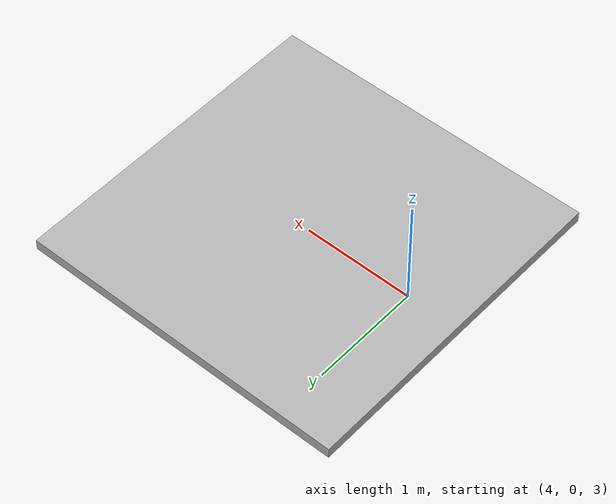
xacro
<?xml version="1.0"?>
<!-- Landing Pad 6-DOF -->
<robot name="FWMAV" xmlns:xacro="http://www.ros.org/wiki/xacro">

  <!-- Constants for robot dimensions -->
  <xacro:property name="PI" value="3.1415926535897931"/>
  <xacro:property name="mass" value="1" /> <!-- arbitrary value for mass -->

  <!-- Import all Gazebo-customization elements, including Gazebo colors -->
  <xacro:include filename="$(find gazebo_ros)/urdf/landing_pad.gazebo" />

  <link name="world"/>

  <!-- x-prismatic -->

  <joint name="xp_joint" type="prismatic">
    <axis xyz="1 0 0" />
    <origin xyz="5 0 3" rpy="0 0 0"/>
    <parent link="world"/>
    <child link="xp_link"/>
    <limit effort="300" velocity="1" lower="-1000" upper="1000"/>
    <dynamics friction="100000"/>
  </joint>

  <link name="xp_link">
      <visual>
        <origin xyz="0 0 0" rpy="0 0 0"/>
        <geometry>
          <box size="1e-6 1e-6 1e-6"/>
        </geometry>
      </visual>
      <inertial>
        <mass value="0.1" />
        <origin xyz="0 0 0" rpy="0 0 0"/>
        <inertia ixx="1e-6" ixy="1e-6" ixz="1e-6" iyy="1e-6" iyz="1e-6" izz="1e-6" />
      </inertial>
  </link>

  <!-- y-prismatic -->

  <joint name="yp_joint" type="prismatic">
    <axis xyz="0 1 0" />
    <origin xyz="0 0 0" rpy="0 0 0"/>
    <parent link="xp_link"/>
    <child link="yp_link"/>
    <limit effort="300" velocity="1" lower="-1000" upper="1000"/>
    <dynamics friction="100000"/>
  </joint>

  <link name="yp_link">
      <visual>
        <origin xyz="0 0 0" rpy="0 0 0"/>
        <geometry>
          <box size="1e-6 1e-6 1e-6"/>
        </geometry>
      </visual>
      <inertial>
        <mass value="0.1" />
        <origin xyz="0 0 0" rpy="0 0 0"/>
        <inertia ixx="1e-6" ixy="1e-6" ixz="1e-6" iyy="1e-6" iyz="1e-6" izz="1e-6" />
      </inertial>
  </link>

  <!-- z-prismatic -->

  <joint name="zp_joint" type="prismatic">
    <axis xyz="0 0 1" />
    <origin xyz="0 0 0" rpy="0 0 0"/>
    <parent link="yp_link"/>
    <child link="zp_link"/>
    <limit effort="300" velocity="1" lower="-1000" upper="1000"/>
    <dynamics friction="100000"/>
  </joint>

  <link name="zp_link">
      <visual>
        <origin xyz="0 0 0" rpy="0 0 0"/>
        <geometry>
          <box size="1e-6 1e-6 1e-6"/>
        </geometry>
      </visual>
      <inertial>
        <mass value="0.1" />
        <origin xyz="0 0 0" rpy="0 0 0"/>
        <inertia ixx="1e-6" ixy="1e-6" ixz="1e-6" iyy="1e-6" iyz="1e-6" izz="1e-6" />
      </inertial>
  </link>

  <!-- z-continuous -->

  <joint name="zc_joint" type="continuous">
    <axis xyz="0 0 1" />
    <origin xyz="0 0 0" rpy="0 0 0"/>
    <parent link="zp_link"/>
    <child link="zc_link"/>
    <limit effort="300" velocity="1"/>
    <dynamics friction="900000"/>
  </joint>

  <link name="zc_link">
      <visual>
        <origin xyz="0 0 0" rpy="0 0 0"/>
        <geometry>
          <box size="1e-6 1e-6 1e-6"/>
        </geometry>
      </visual>
      <inertial>
        <mass value="0.1" />
        <origin xyz="0 0 0" rpy="0 0 0"/>
        <inertia ixx="1e-6" ixy="1e-6" ixz="1e-6" iyy="1e-6" iyz="1e-6" izz="1e-6" />
      </inertial>
  </link>

  <!-- y-continuous -->

  <joint name="yc_joint" type="continuous">
    <axis xyz="0 1 0" />
    <origin xyz="0 0 0" rpy="0 0 0"/>
    <parent link="zc_link"/>
    <child link="yc_link"/>
    <limit effort="300" velocity="1"/>
    <dynamics friction="100000"/>
  </joint>

  <link name="yc_link">
      <visual>
        <origin xyz="0 0 0" rpy="0 0 0"/>
        <geometry>
          <box size="1e-6 1e-6 1e-6"/>
        </geometry>
      </visual>
      <inertial>
        <mass value="0.1" />
        <origin xyz="0 0 0" rpy="0 0 0"/>
        <inertia ixx="1e-6" ixy="1e-6" ixz="1e-6" iyy="1e-6" iyz="1e-6" izz="1e-6" />
      </inertial>
  </link>

  <!-- x-continuous -->

  <joint name="xc_joint" type="continuous">
    <axis xyz="1 0 0" />
    <origin xyz="0 0 0" rpy="0 0 0"/>
    <parent link="yc_link"/>
    <child link="xc_link"/>
    <limit effort="300" velocity="1"/>
    <dynamics friction="100000"/>
  </joint>

  <link name="xc_link">
      <visual>
        <origin xyz="0 0 0" rpy="0 0 0"/>
        <geometry>
          <box size="1e-6 1e-6 1e-6"/>
        </geometry>
      </visual>
      <inertial>
        <mass value="0.1" />
        <origin xyz="0 0 0" rpy="0 0 0"/>
        <inertia ixx="1e-6" ixy="1e-6" ixz="1e-6" iyy="1e-6" iyz="1e-6" izz="1e-6" />
      </inertial>
  </link>

  <!-- y-continuous -->

  <joint name="plate_joint" type="fixed">
    <axis xyz="0 0 0" />
    <origin xyz="0 0 0" rpy="0 0 0"/>
    <parent link="xc_link"/>
    <child link="plate_link"/>
    <limit effort="300" velocity="1"/>
    <dynamics friction="100000"/>
  </joint>

  <link name="plate_link">
      <visual>
        <origin xyz="0 0 0" rpy="0 0 0"/>
        <geometry>
          <box size="3 3 1e-1"/>
        </geometry>
      </visual>
      <inertial>
        <mass value="10" />
        <origin xyz="0 0 0" rpy="0 0 0"/>
        <inertia ixx="1e-6" ixy="1e-6" ixz="1e-6" iyy="1e-6" iyz="1e-6" izz="1e-6" />
      </inertial>
      <collision>
        <origin xyz="0 0 0" rpy="0 0 0"/>
        <geometry>
          <box size="3 3 1e-1"/>
        </geometry>
        <surface>
          <friction>
            <ode>
              <mu>100</mu>
              <mu2>50</mu2>
            </ode>
          </friction>
        </surface>
      </collision>
  </link>

</robot>
